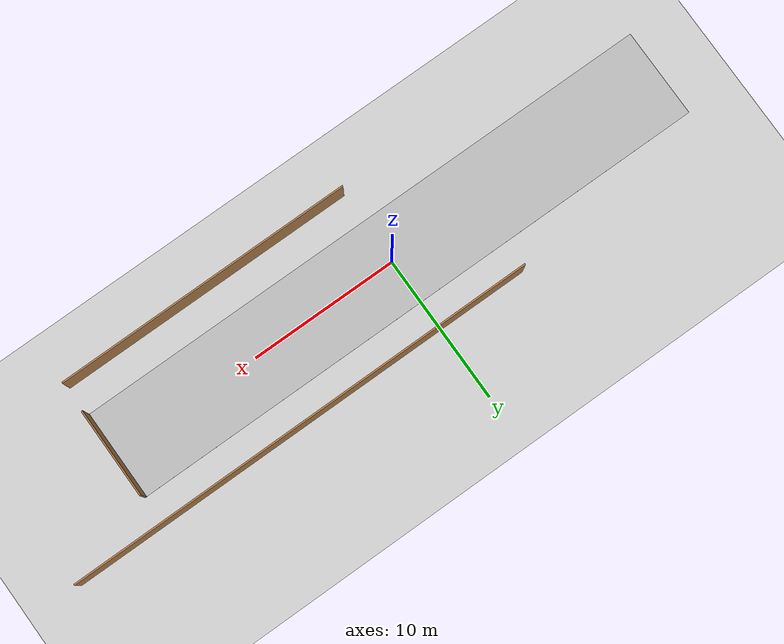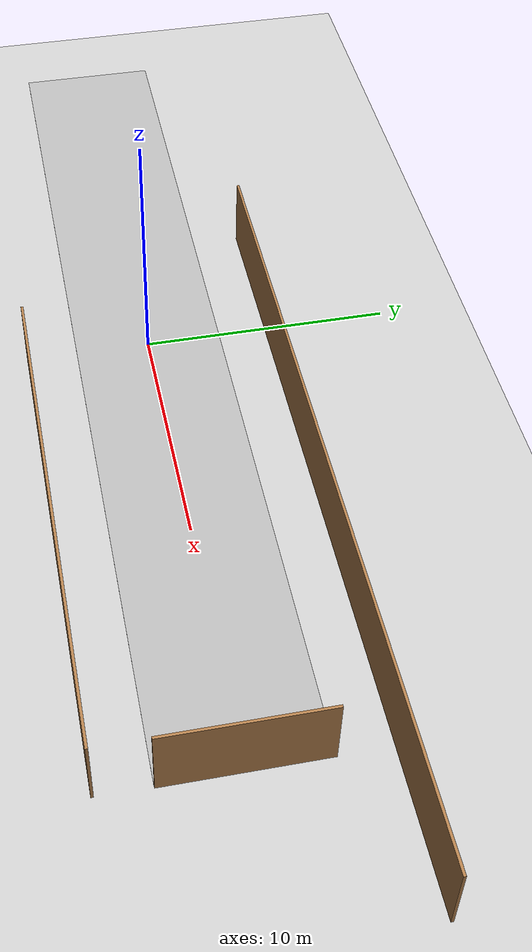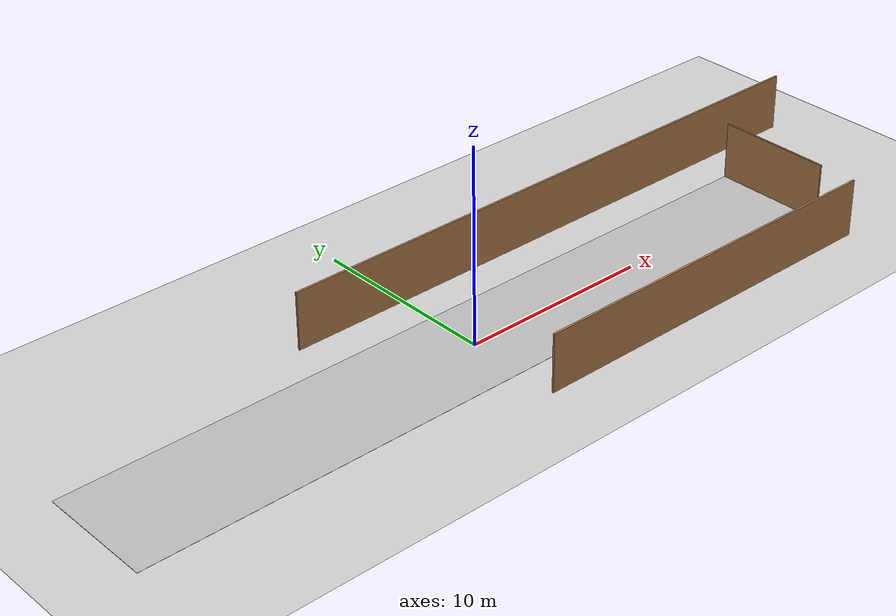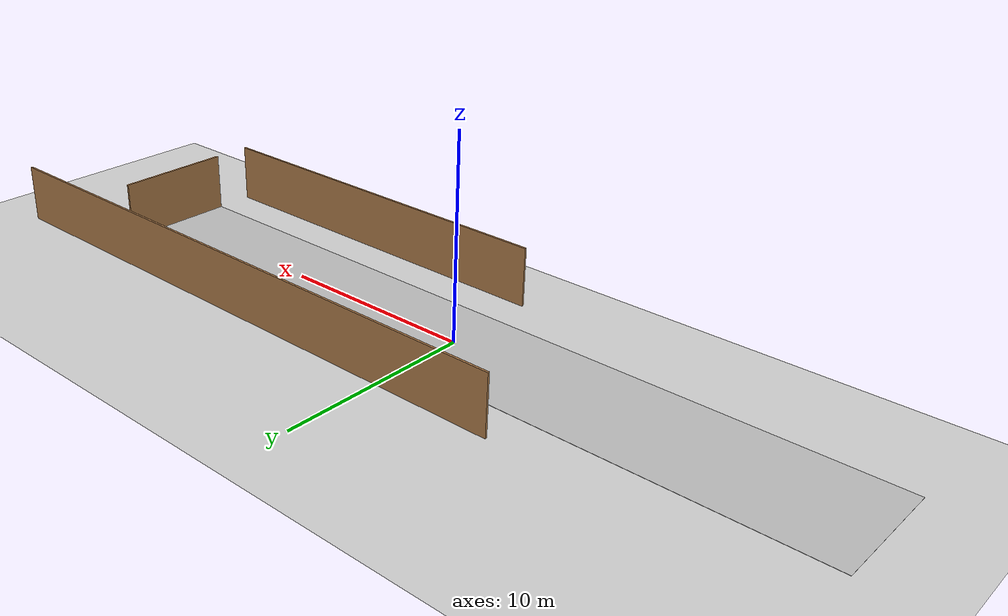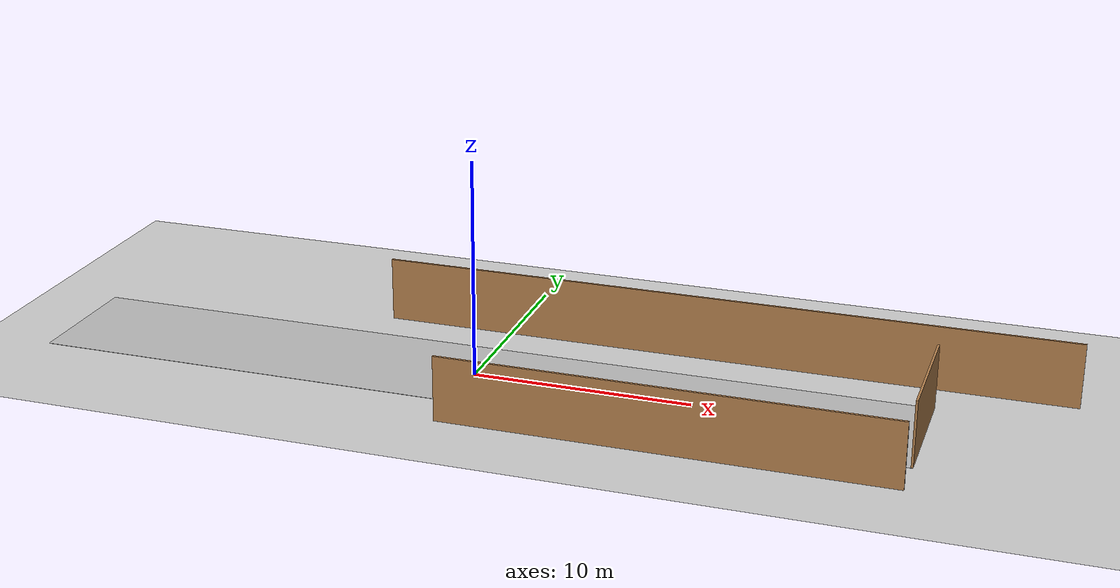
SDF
<?xml version="1.0" ?>
<sdf version="1.5">
  <world name="slam_test">

    <!-- 全向无影子光源 -->
    <light type="directional" name="point_light">
      <pose>0.0 0 15 0 0 0</pose>
      <cast_shadows>false</cast_shadows>
    </light>

    <!-- A ground plane -->
    <include>
      <uri>model://ground_plane</uri>
    </include>

    <!-- 初始视角 -->
    <gui fullscreen='0'>
      <camera name='user_camera'>
        <pose>-13.0 0.0 1.0 0 0.0 0.0</pose>
        <view_controller>orbit</view_controller>
      </camera>
    </gui>

    <!-- 地面 -->
    <model name="logo_ground">
      <pose>0 0 0.005 0 0 1.57</pose>
      <static>true</static>
      <link name="link">
        <visual name="visual">
          <cast_shadows>false</cast_shadows>
          <geometry>
            <box>
              <size>6 40 0.01</size>
            </box>
          </geometry>
          <material>
            <script>
              <uri>model://logo_ground/materials/scripts</uri>
              <uri>model://logo_ground/materials/textures</uri>
              <name>Cube/logo_ground</name>
            </script>
          </material>
        </visual>
      </link>
    </model>

    <model name='wall_side'>
      <static>true</static>
      <link name="wall_side_left">
          <pose frame=''>10 5 1.5 0 -0 0</pose>
          <inertial>
            <mass>2.0</mass>
          </inertial>
          <collision name="collision">
            <geometry>
              <box>
                <size>20 0.1 3</size>
              </box>
            </geometry>
          </collision>
          <visual name="visual">
            <geometry>
              <box>
                <size>32 0.1 3</size>
              </box>
            </geometry>
            <material>
              <script>
                <uri>file://media/materials/scripts/gazebo.material</uri>
                <name>Gazebo/Wood</name>
              </script>
              <ambient>1 1 1 1</ambient>
            </material>
          </visual>
      </link>
      <link name="wall_side_right">
          <pose frame=''>10 -5 1.5 0 -0 0</pose>
          <inertial>
            <mass>2.0</mass>
          </inertial>
          <collision name="collision">
            <geometry>
              <box>
                <size>32 0.1 3</size>
              </box>
            </geometry>
          </collision>
          <visual name="visual">
            <geometry>
              <box>
                <size>20 0.1 3</size>
              </box>
            </geometry>
            <material>
              <script>
                <uri>file://media/materials/scripts/gazebo.material</uri>
                <name>Gazebo/Wood</name>
              </script>
              <ambient>1 1 1 1</ambient>
            </material>
          </visual>
      </link>
      <link name="wall_side_back">
          <pose frame=''>20 -0 1.5 0 -0 1.57</pose>
          <inertial>
            <mass>2.0</mass>
          </inertial>
          <collision name="collision">
            <geometry>
              <box>
                <size>10 0.1 3</size>
              </box>
            </geometry>
          </collision>
          <visual name="visual">
            <geometry>
              <box>
                <size>6 0.1 3</size>
              </box>
            </geometry>
            <material>
              <script>
                <uri>file://media/materials/scripts/gazebo.material</uri>
                <name>Gazebo/Wood</name>
              </script>
              <ambient>1 1 1 1</ambient>
            </material>
          </visual>
      </link>
    </model>

  </world>
</sdf>
